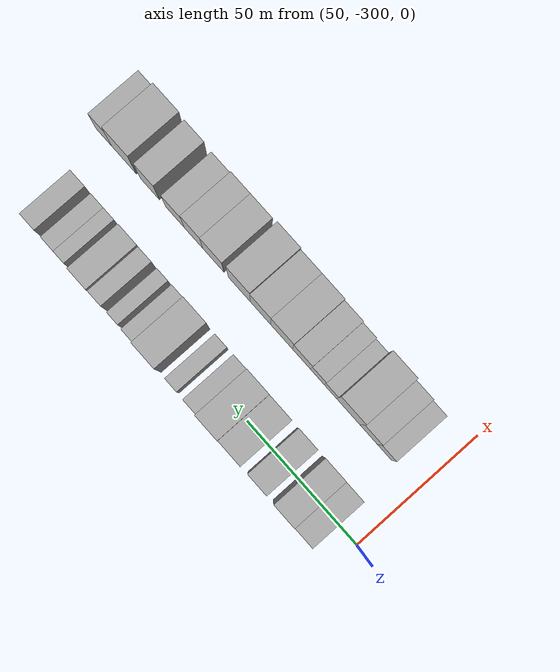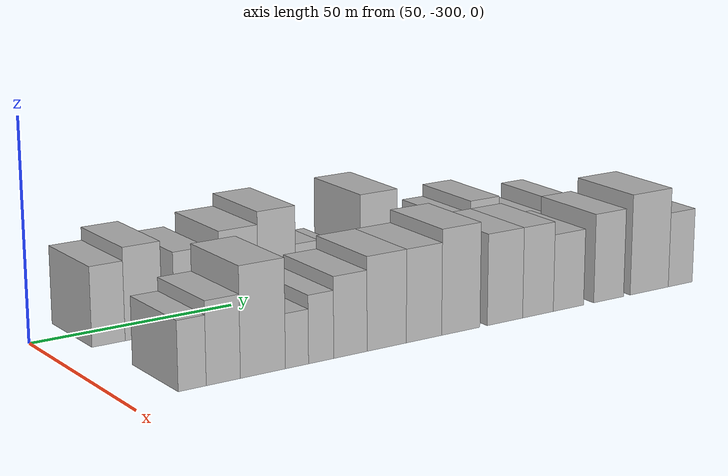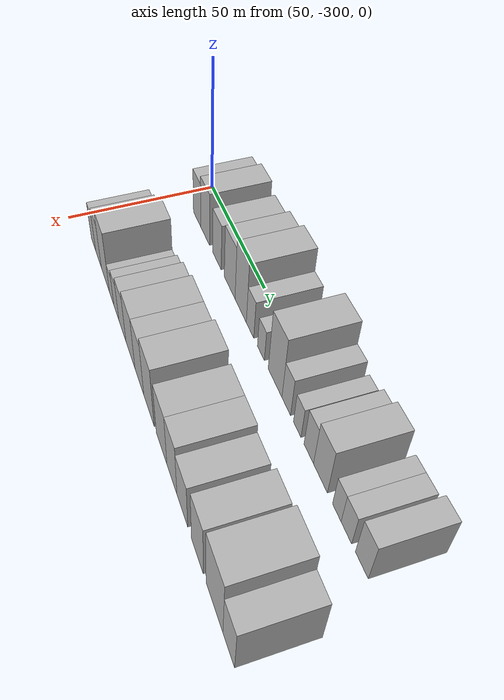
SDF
<sdf version="1.6">
 <world name="default">
  <model name="building_1">
   <static>1</static>
   <pose>50.0000 -286.0324 0 0.000000 0.000000 0.000000</pose>
   <link name="link">
    <pose>0 0 9.00 0 0 0</pose>
    <collision name="collision"><geometry><box><size>20.0000 7.9351 18.0000</size></box></geometry></collision>
    <visual name="visual">
     <cast_shadows>0</cast_shadows>
     <geometry><box><size>20.0000 7.9351 18.0000</size></box></geometry>
     <material>
      <script>
       <uri>model://HANNAS_wall/materials/scripts</uri>
       <uri>model://HANNAS_wall/materials/textures</uri>
       <name>vrc/HANNAS_wall</name>
      </script>
     </material>
    </visual>
   </link>
  </model>
  <model name="building_2">
   <static>1</static>
   <pose>50.0000 -277.5326 0 0.000000 0.000000 0.000000</pose>
   <link name="link">
    <pose>0 0 10.50 0 0 0</pose>
    <collision name="collision"><geometry><box><size>20.0000 9.0645 21.0000</size></box></geometry></collision>
    <visual name="visual">
     <cast_shadows>0</cast_shadows>
     <geometry><box><size>20.0000 9.0645 21.0000</size></box></geometry>
     <material>
      <script>
       <uri>model://HANNAS_wall/materials/scripts</uri>
       <uri>model://HANNAS_wall/materials/textures</uri>
       <name>vrc/HANNAS_wall</name>
      </script>
     </material>
    </visual>
   </link>
  </model>
  <model name="building_3">
   <static>1</static>
   <pose>50.0000 -265.7728 0 0.000000 0.000000 0.000000</pose>
   <link name="link">
    <pose>0 0 9.00 0 0 0</pose>
    <collision name="collision"><geometry><box><size>20.0000 8.4551 18.0000</size></box></geometry></collision>
    <visual name="visual">
     <cast_shadows>0</cast_shadows>
     <geometry><box><size>20.0000 8.4551 18.0000</size></box></geometry>
     <material>
      <script>
       <uri>model://HANNAS_wall/materials/scripts</uri>
       <uri>model://HANNAS_wall/materials/textures</uri>
       <name>vrc/HANNAS_wall</name>
      </script>
     </material>
    </visual>
   </link>
  </model>
  <model name="building_4">
   <static>1</static>
   <pose>50.0000 -253.5943 0 0.000000 0.000000 0.000000</pose>
   <link name="link">
    <pose>0 0 10.50 0 0 0</pose>
    <collision name="collision"><geometry><box><size>20.0000 9.9019 21.0000</size></box></geometry></collision>
    <visual name="visual">
     <cast_shadows>0</cast_shadows>
     <geometry><box><size>20.0000 9.9019 21.0000</size></box></geometry>
     <material>
      <script>
       <uri>model://HANNAS_wall/materials/scripts</uri>
       <uri>model://HANNAS_wall/materials/textures</uri>
       <name>vrc/HANNAS_wall</name>
      </script>
     </material>
    </visual>
   </link>
  </model>
  <model name="building_5">
   <static>1</static>
   <pose>50.0000 -243.7121 0 0.000000 0.000000 0.000000</pose>
   <link name="link">
    <pose>0 0 12.00 0 0 0</pose>
    <collision name="collision"><geometry><box><size>20.0000 9.8626 24.0000</size></box></geometry></collision>
    <visual name="visual">
     <cast_shadows>0</cast_shadows>
     <geometry><box><size>20.0000 9.8626 24.0000</size></box></geometry>
     <material>
      <script>
       <uri>model://HANNAS_wall/materials/scripts</uri>
       <uri>model://HANNAS_wall/materials/textures</uri>
       <name>vrc/HANNAS_wall</name>
      </script>
     </material>
    </visual>
   </link>
  </model>
  <model name="building_6">
   <static>1</static>
   <pose>50.0000 -235.6950 0 0.000000 0.000000 0.000000</pose>
   <link name="link">
    <pose>0 0 7.50 0 0 0</pose>
    <collision name="collision"><geometry><box><size>20.0000 6.1716 15.0000</size></box></geometry></collision>
    <visual name="visual">
     <cast_shadows>0</cast_shadows>
     <geometry><box><size>20.0000 6.1716 15.0000</size></box></geometry>
     <material>
      <script>
       <uri>model://HANNAS_wall/materials/scripts</uri>
       <uri>model://HANNAS_wall/materials/textures</uri>
       <name>vrc/HANNAS_wall</name>
      </script>
     </material>
    </visual>
   </link>
  </model>
  <model name="building_7">
   <static>1</static>
   <pose>50.0000 -226.8750 0 0.000000 0.000000 0.000000</pose>
   <link name="link">
    <pose>0 0 6.00 0 0 0</pose>
    <collision name="collision"><geometry><box><size>20.0000 5.4686 12.0000</size></box></geometry></collision>
    <visual name="visual">
     <cast_shadows>0</cast_shadows>
     <geometry><box><size>20.0000 5.4686 12.0000</size></box></geometry>
     <material>
      <script>
       <uri>model://HANNAS_wall/materials/scripts</uri>
       <uri>model://HANNAS_wall/materials/textures</uri>
       <name>vrc/HANNAS_wall</name>
      </script>
     </material>
    </visual>
   </link>
  </model>
  <model name="building_8">
   <static>1</static>
   <pose>50.0000 -216.0352 0 0.000000 0.000000 0.000000</pose>
   <link name="link">
    <pose>0 0 12.00 0 0 0</pose>
    <collision name="collision"><geometry><box><size>20.0000 10.2110 24.0000</size></box></geometry></collision>
    <visual name="visual">
     <cast_shadows>0</cast_shadows>
     <geometry><box><size>20.0000 10.2110 24.0000</size></box></geometry>
     <material>
      <script>
       <uri>model://HANNAS_wall/materials/scripts</uri>
       <uri>model://HANNAS_wall/materials/textures</uri>
       <name>vrc/HANNAS_wall</name>
      </script>
     </material>
    </visual>
   </link>
  </model>
  <model name="building_9">
   <static>1</static>
   <pose>50.0000 -207.8794 0 0.000000 0.000000 0.000000</pose>
   <link name="link">
    <pose>0 0 7.50 0 0 0</pose>
    <collision name="collision"><geometry><box><size>20.0000 6.1006 15.0000</size></box></geometry></collision>
    <visual name="visual">
     <cast_shadows>0</cast_shadows>
     <geometry><box><size>20.0000 6.1006 15.0000</size></box></geometry>
     <material>
      <script>
       <uri>model://HANNAS_wall/materials/scripts</uri>
       <uri>model://HANNAS_wall/materials/textures</uri>
       <name>vrc/HANNAS_wall</name>
      </script>
     </material>
    </visual>
   </link>
  </model>
  <model name="building_10">
   <static>1</static>
   <pose>50.0000 -200.2772 0 0.000000 0.000000 0.000000</pose>
   <link name="link">
    <pose>0 0 6.00 0 0 0</pose>
    <collision name="collision"><geometry><box><size>20.0000 5.1039 12.0000</size></box></geometry></collision>
    <visual name="visual">
     <cast_shadows>0</cast_shadows>
     <geometry><box><size>20.0000 5.1039 12.0000</size></box></geometry>
     <material>
      <script>
       <uri>model://HANNAS_wall/materials/scripts</uri>
       <uri>model://HANNAS_wall/materials/textures</uri>
       <name>vrc/HANNAS_wall</name>
      </script>
     </material>
    </visual>
   </link>
  </model>
  <model name="building_11">
   <static>1</static>
   <pose>50.0000 -192.6694 0 0.000000 0.000000 0.000000</pose>
   <link name="link">
    <pose>0 0 7.50 0 0 0</pose>
    <collision name="collision"><geometry><box><size>20.0000 6.1117 15.0000</size></box></geometry></collision>
    <visual name="visual">
     <cast_shadows>0</cast_shadows>
     <geometry><box><size>20.0000 6.1117 15.0000</size></box></geometry>
     <material>
      <script>
       <uri>model://HANNAS_wall/materials/scripts</uri>
       <uri>model://HANNAS_wall/materials/textures</uri>
       <name>vrc/HANNAS_wall</name>
      </script>
     </material>
    </visual>
   </link>
  </model>
  <model name="building_12">
   <static>1</static>
   <pose>50.0000 -185.3379 0 0.000000 0.000000 0.000000</pose>
   <link name="link">
    <pose>0 0 9.00 0 0 0</pose>
    <collision name="collision"><geometry><box><size>20.0000 8.5512 18.0000</size></box></geometry></collision>
    <visual name="visual">
     <cast_shadows>0</cast_shadows>
     <geometry><box><size>20.0000 8.5512 18.0000</size></box></geometry>
     <material>
      <script>
       <uri>model://HANNAS_wall/materials/scripts</uri>
       <uri>model://HANNAS_wall/materials/textures</uri>
       <name>vrc/HANNAS_wall</name>
      </script>
     </material>
    </visual>
   </link>
  </model>
  <model name="building_13">
   <static>1</static>
   <pose>50.0000 -175.5962 0 0.000000 0.000000 0.000000</pose>
   <link name="link">
    <pose>0 0 6.00 0 0 0</pose>
    <collision name="collision"><geometry><box><size>20.0000 4.9323 12.0000</size></box></geometry></collision>
    <visual name="visual">
     <cast_shadows>0</cast_shadows>
     <geometry><box><size>20.0000 4.9323 12.0000</size></box></geometry>
     <material>
      <script>
       <uri>model://HANNAS_wall/materials/scripts</uri>
       <uri>model://HANNAS_wall/materials/textures</uri>
       <name>vrc/HANNAS_wall</name>
      </script>
     </material>
    </visual>
   </link>
  </model>
  <model name="building_14">
   <static>1</static>
   <pose>50.0000 -170.1926 0 0.000000 0.000000 0.000000</pose>
   <link name="link">
    <pose>0 0 6.00 0 0 0</pose>
    <collision name="collision"><geometry><box><size>20.0000 5.8748 12.0000</size></box></geometry></collision>
    <visual name="visual">
     <cast_shadows>0</cast_shadows>
     <geometry><box><size>20.0000 5.8748 12.0000</size></box></geometry>
     <material>
      <script>
       <uri>model://HANNAS_wall/materials/scripts</uri>
       <uri>model://HANNAS_wall/materials/textures</uri>
       <name>vrc/HANNAS_wall</name>
      </script>
     </material>
    </visual>
   </link>
  </model>
  <model name="building_15">
   <static>1</static>
   <pose>50.0000 -161.8780 0 0.000000 0.000000 0.000000</pose>
   <link name="link">
    <pose>0 0 7.50 0 0 0</pose>
    <collision name="collision"><geometry><box><size>20.0000 6.7544 15.0000</size></box></geometry></collision>
    <visual name="visual">
     <cast_shadows>0</cast_shadows>
     <geometry><box><size>20.0000 6.7544 15.0000</size></box></geometry>
     <material>
      <script>
       <uri>model://HANNAS_wall/materials/scripts</uri>
       <uri>model://HANNAS_wall/materials/textures</uri>
       <name>vrc/HANNAS_wall</name>
      </script>
     </material>
    </visual>
   </link>
  </model>
  <model name="building_63">
   <static>1</static>
   <pose>85.0000 -284.7858 0 0.000000 0.000000 0.000000</pose>
   <link name="link">
    <pose>0 0 7.50 0 0 0</pose>
    <collision name="collision"><geometry><box><size>20.0000 6.4284 15.0000</size></box></geometry></collision>
    <visual name="visual">
     <cast_shadows>0</cast_shadows>
     <geometry><box><size>20.0000 6.4284 15.0000</size></box></geometry>
     <material>
      <script>
       <uri>model://HANNAS_wall/materials/scripts</uri>
       <uri>model://HANNAS_wall/materials/textures</uri>
       <name>vrc/HANNAS_wall</name>
      </script>
     </material>
    </visual>
   </link>
  </model>
  <model name="building_64">
   <static>1</static>
   <pose>85.0000 -277.5835 0 0.000000 0.000000 0.000000</pose>
   <link name="link">
    <pose>0 0 9.00 0 0 0</pose>
    <collision name="collision"><geometry><box><size>20.0000 7.9762 18.0000</size></box></geometry></collision>
    <visual name="visual">
     <cast_shadows>0</cast_shadows>
     <geometry><box><size>20.0000 7.9762 18.0000</size></box></geometry>
     <material>
      <script>
       <uri>model://HANNAS_wall/materials/scripts</uri>
       <uri>model://HANNAS_wall/materials/textures</uri>
       <name>vrc/HANNAS_wall</name>
      </script>
     </material>
    </visual>
   </link>
  </model>
  <model name="building_65">
   <static>1</static>
   <pose>85.0000 -268.2206 0 0.000000 0.000000 0.000000</pose>
   <link name="link">
    <pose>0 0 12.00 0 0 0</pose>
    <collision name="collision"><geometry><box><size>20.0000 10.7495 24.0000</size></box></geometry></collision>
    <visual name="visual">
     <cast_shadows>0</cast_shadows>
     <geometry><box><size>20.0000 10.7495 24.0000</size></box></geometry>
     <material>
      <script>
       <uri>model://HANNAS_wall/materials/scripts</uri>
       <uri>model://HANNAS_wall/materials/textures</uri>
       <name>vrc/HANNAS_wall</name>
      </script>
     </material>
    </visual>
   </link>
  </model>
  <model name="building_66">
   <static>1</static>
   <pose>85.0000 -260.0247 0 0.000000 0.000000 0.000000</pose>
   <link name="link">
    <pose>0 0 6.00 0 0 0</pose>
    <collision name="collision"><geometry><box><size>20.0000 5.6422 12.0000</size></box></geometry></collision>
    <visual name="visual">
     <cast_shadows>0</cast_shadows>
     <geometry><box><size>20.0000 5.6422 12.0000</size></box></geometry>
     <material>
      <script>
       <uri>model://HANNAS_wall/materials/scripts</uri>
       <uri>model://HANNAS_wall/materials/textures</uri>
       <name>vrc/HANNAS_wall</name>
      </script>
     </material>
    </visual>
   </link>
  </model>
  <model name="building_67">
   <static>1</static>
   <pose>85.0000 -254.0826 0 0.000000 0.000000 0.000000</pose>
   <link name="link">
    <pose>0 0 7.50 0 0 0</pose>
    <collision name="collision"><geometry><box><size>20.0000 6.2421 15.0000</size></box></geometry></collision>
    <visual name="visual">
     <cast_shadows>0</cast_shadows>
     <geometry><box><size>20.0000 6.2421 15.0000</size></box></geometry>
     <material>
      <script>
       <uri>model://HANNAS_wall/materials/scripts</uri>
       <uri>model://HANNAS_wall/materials/textures</uri>
       <name>vrc/HANNAS_wall</name>
      </script>
     </material>
    </visual>
   </link>
  </model>
  <model name="building_68">
   <static>1</static>
   <pose>85.0000 -246.7564 0 0.000000 0.000000 0.000000</pose>
   <link name="link">
    <pose>0 0 9.00 0 0 0</pose>
    <collision name="collision"><geometry><box><size>20.0000 8.4102 18.0000</size></box></geometry></collision>
    <visual name="visual">
     <cast_shadows>0</cast_shadows>
     <geometry><box><size>20.0000 8.4102 18.0000</size></box></geometry>
     <material>
      <script>
       <uri>model://HANNAS_wall/materials/scripts</uri>
       <uri>model://HANNAS_wall/materials/textures</uri>
       <name>vrc/HANNAS_wall</name>
      </script>
     </material>
    </visual>
   </link>
  </model>
  <model name="building_69">
   <static>1</static>
   <pose>85.0000 -237.4723 0 0.000000 0.000000 0.000000</pose>
   <link name="link">
    <pose>0 0 10.50 0 0 0</pose>
    <collision name="collision"><geometry><box><size>20.0000 10.1579 21.0000</size></box></geometry></collision>
    <visual name="visual">
     <cast_shadows>0</cast_shadows>
     <geometry><box><size>20.0000 10.1579 21.0000</size></box></geometry>
     <material>
      <script>
       <uri>model://HANNAS_wall/materials/scripts</uri>
       <uri>model://HANNAS_wall/materials/textures</uri>
       <name>vrc/HANNAS_wall</name>
      </script>
     </material>
    </visual>
   </link>
  </model>
  <model name="building_70">
   <static>1</static>
   <pose>85.0000 -227.7130 0 0.000000 0.000000 0.000000</pose>
   <link name="link">
    <pose>0 0 10.50 0 0 0</pose>
    <collision name="collision"><geometry><box><size>20.0000 9.3609 21.0000</size></box></geometry></collision>
    <visual name="visual">
     <cast_shadows>0</cast_shadows>
     <geometry><box><size>20.0000 9.3609 21.0000</size></box></geometry>
     <material>
      <script>
       <uri>model://HANNAS_wall/materials/scripts</uri>
       <uri>model://HANNAS_wall/materials/textures</uri>
       <name>vrc/HANNAS_wall</name>
      </script>
     </material>
    </visual>
   </link>
  </model>
  <model name="building_71">
   <static>1</static>
   <pose>85.0000 -217.8371 0 0.000000 0.000000 0.000000</pose>
   <link name="link">
    <pose>0 0 12.00 0 0 0</pose>
    <collision name="collision"><geometry><box><size>20.0000 10.3909 24.0000</size></box></geometry></collision>
    <visual name="visual">
     <cast_shadows>0</cast_shadows>
     <geometry><box><size>20.0000 10.3909 24.0000</size></box></geometry>
     <material>
      <script>
       <uri>model://HANNAS_wall/materials/scripts</uri>
       <uri>model://HANNAS_wall/materials/textures</uri>
       <name>vrc/HANNAS_wall</name>
      </script>
     </material>
    </visual>
   </link>
  </model>
  <model name="building_72">
   <static>1</static>
   <pose>85.0000 -205.6947 0 0.000000 0.000000 0.000000</pose>
   <link name="link">
    <pose>0 0 10.50 0 0 0</pose>
    <collision name="collision"><geometry><box><size>20.0000 9.8939 21.0000</size></box></geometry></collision>
    <visual name="visual">
     <cast_shadows>0</cast_shadows>
     <geometry><box><size>20.0000 9.8939 21.0000</size></box></geometry>
     <material>
      <script>
       <uri>model://HANNAS_wall/materials/scripts</uri>
       <uri>model://HANNAS_wall/materials/textures</uri>
       <name>vrc/HANNAS_wall</name>
      </script>
     </material>
    </visual>
   </link>
  </model>
  <model name="building_73">
   <static>1</static>
   <pose>85.0000 -196.3677 0 0.000000 0.000000 0.000000</pose>
   <link name="link">
    <pose>0 0 10.50 0 0 0</pose>
    <collision name="collision"><geometry><box><size>20.0000 8.7602 21.0000</size></box></geometry></collision>
    <visual name="visual">
     <cast_shadows>0</cast_shadows>
     <geometry><box><size>20.0000 8.7602 21.0000</size></box></geometry>
     <material>
      <script>
       <uri>model://HANNAS_wall/materials/scripts</uri>
       <uri>model://HANNAS_wall/materials/textures</uri>
       <name>vrc/HANNAS_wall</name>
      </script>
     </material>
    </visual>
   </link>
  </model>
  <model name="building_74">
   <static>1</static>
   <pose>85.0000 -187.5662 0 0.000000 0.000000 0.000000</pose>
   <link name="link">
    <pose>0 0 9.00 0 0 0</pose>
    <collision name="collision"><geometry><box><size>20.0000 8.8428 18.0000</size></box></geometry></collision>
    <visual name="visual">
     <cast_shadows>0</cast_shadows>
     <geometry><box><size>20.0000 8.8428 18.0000</size></box></geometry>
     <material>
      <script>
       <uri>model://HANNAS_wall/materials/scripts</uri>
       <uri>model://HANNAS_wall/materials/textures</uri>
       <name>vrc/HANNAS_wall</name>
      </script>
     </material>
    </visual>
   </link>
  </model>
  <model name="building_75">
   <static>1</static>
   <pose>85.0000 -175.6686 0 0.000000 0.000000 0.000000</pose>
   <link name="link">
    <pose>0 0 10.50 0 0 0</pose>
    <collision name="collision"><geometry><box><size>20.0000 8.9523 21.0000</size></box></geometry></collision>
    <visual name="visual">
     <cast_shadows>0</cast_shadows>
     <geometry><box><size>20.0000 8.9523 21.0000</size></box></geometry>
     <material>
      <script>
       <uri>model://HANNAS_wall/materials/scripts</uri>
       <uri>model://HANNAS_wall/materials/textures</uri>
       <name>vrc/HANNAS_wall</name>
      </script>
     </material>
    </visual>
   </link>
  </model>
  <model name="building_76">
   <static>1</static>
   <pose>85.0000 -163.3056 0 0.000000 0.000000 0.000000</pose>
   <link name="link">
    <pose>0 0 12.00 0 0 0</pose>
    <collision name="collision"><geometry><box><size>20.0000 11.7736 24.0000</size></box></geometry></collision>
    <visual name="visual">
     <cast_shadows>0</cast_shadows>
     <geometry><box><size>20.0000 11.7736 24.0000</size></box></geometry>
     <material>
      <script>
       <uri>model://HANNAS_wall/materials/scripts</uri>
       <uri>model://HANNAS_wall/materials/textures</uri>
       <name>vrc/HANNAS_wall</name>
      </script>
     </material>
    </visual>
   </link>
  </model>
  <model name="building_77">
   <static>1</static>
   <pose>85.0000 -153.6453 0 0.000000 0.000000 0.000000</pose>
   <link name="link">
    <pose>0 0 9.00 0 0 0</pose>
    <collision name="collision"><geometry><box><size>20.0000 7.5472 18.0000</size></box></geometry></collision>
    <visual name="visual">
     <cast_shadows>0</cast_shadows>
     <geometry><box><size>20.0000 7.5472 18.0000</size></box></geometry>
     <material>
      <script>
       <uri>model://HANNAS_wall/materials/scripts</uri>
       <uri>model://HANNAS_wall/materials/textures</uri>
       <name>vrc/HANNAS_wall</name>
      </script>
     </material>
    </visual>
   </link>
  </model>
 </world>
</sdf>
